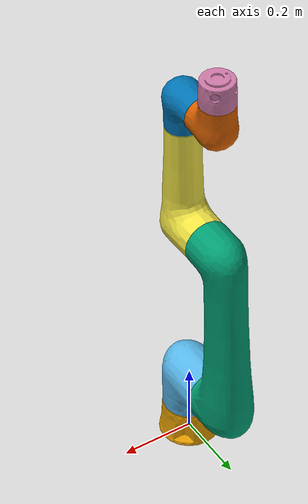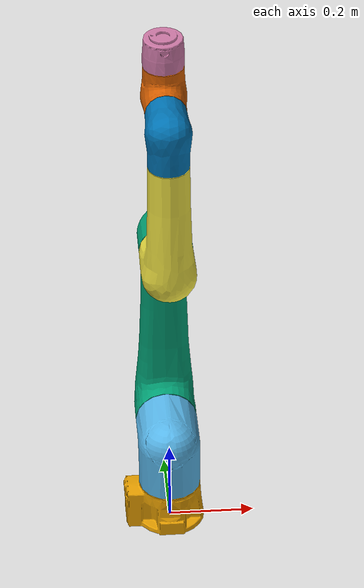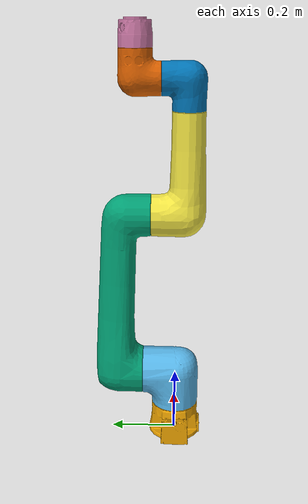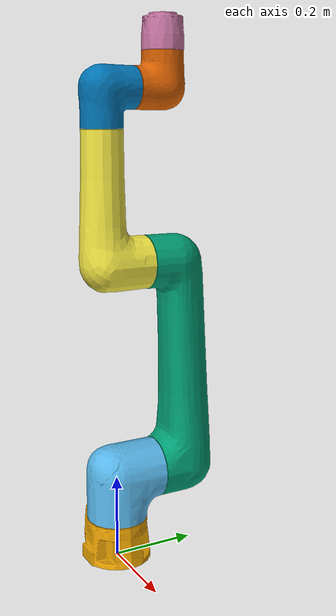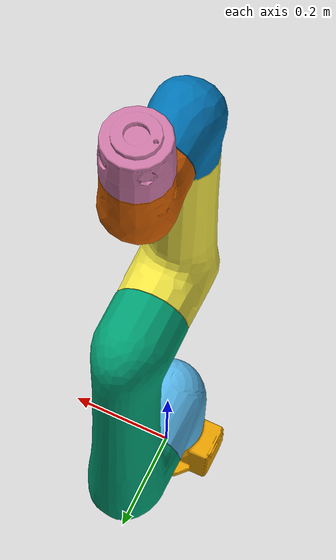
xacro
<?xml version="1.0" encoding="utf-8"?>
<robot name="cobotta_pro" xmlns:xacro="http://www.ros.org/wiki/xacro">
  <!-- Include description for 6-dof manipulator -->
  <xacro:include filename="$(find cvrb0609_description)/urdf/cvrb0609.urdf.xacro"/>
  <xacro:arg name="prefix" default="cobotta_pro_"/>

  <!-- Instantiate cobotta pro -->
  <xacro:cvrb0609 prefix="$(arg prefix)"/>

  <link name="world"/>

  <joint name="$(arg prefix)joint_w" type="fixed">
    <origin xyz="0 0 0" rpy="0 0 0"/>
    <parent link="world"/>
    <child link="$(arg prefix)base_link"/>
  </joint>
</robot>

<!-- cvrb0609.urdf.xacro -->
<!-- |    This document was autogenerated by xacro from cvrb0609.urdf.xacro            | -->
<!-- |    EDITING THIS FILE BY HAND IS NOT RECOMMENDED                                 | -->
<robot name="cvrb0609" xmlns:xacro="http://www.ros.org/wiki/xacro">
  <xacro:macro name="cvrb0609" params="prefix">

    <link name="${prefix}base_link">
      <visual>
        <origin rpy="0 0 0" xyz="0 0 0"/>
        <geometry>
          <mesh filename="package://cvrb0609_description/meshes//base_link.dae" scale="1 1 1"/>
        </geometry>
      </visual>
      <collision>
        <origin rpy="0 0 0" xyz="0 0 0"/>
        <geometry>
          <mesh filename="package://cvrb0609_description/meshes//base_link.dae" scale="1 1 1"/>
        </geometry>
      </collision>
      <inertial>
        <mass value="1"/>
        <origin rpy="0.000000 0.000000 0.000000" xyz="0.000000 0.000000 0.000000"/>
        <inertia ixx="1" ixy="0" ixz="0" iyy="1" iyz="0" izz="1"/>
      </inertial>
    </link>
    <link name="${prefix}J1">
      <visual>
        <origin rpy="0 0 0" xyz="0 0 0"/>
        <geometry>
          <mesh filename="package://cvrb0609_description/meshes//J1.dae" scale="1 1 1"/>
        </geometry>
      </visual>
      <collision>
        <origin rpy="0 0 0" xyz="0 0 0"/>
        <geometry>
          <mesh filename="package://cvrb0609_description/meshes//J1.dae" scale="1 1 1"/>
        </geometry>
      </collision>
      <inertial>
        <mass value="1"/>
        <origin rpy="0.000000 0.000000 0.000000" xyz="0.000000 0.000000 0.000000"/>
        <inertia ixx="1" ixy="0" ixz="0" iyy="1" iyz="0" izz="1"/>
      </inertial>
    </link>
    <joint name="${prefix}joint_1" type="revolute">
      <parent link="${prefix}base_link"/>
      <child link="${prefix}J1"/>
      <origin rpy="0.000000 0.000000 0.000000" xyz="0.000000 0.000000 0.101000"/>
      <axis xyz="-0.000000 -0.000000 1.000000"/>
      <limit effort="1" lower="-4.71238898038469" upper="4.71238898038469" velocity="0.397935"/>
      <dynamics damping="0" friction="0"/>
    </joint>
    <link name="${prefix}J2">
      <visual>
        <origin rpy="0 0 0" xyz="0 0 0"/>
        <geometry>
          <mesh filename="package://cvrb0609_description/meshes//J2.dae" scale="1 1 1"/>
        </geometry>
      </visual>
      <collision>
        <origin rpy="0 0 0" xyz="0 0 0"/>
        <geometry>
          <mesh filename="package://cvrb0609_description/meshes//J2.dae" scale="1 1 1"/>
        </geometry>
      </collision>
      <inertial>
        <mass value="1"/>
        <origin rpy="0.000000 0.000000 0.000000" xyz="0.000000 0.000000 0.000000"/>
        <inertia ixx="1" ixy="0" ixz="0" iyy="1" iyz="0" izz="1"/>
      </inertial>
    </link>
    <joint name="${prefix}joint_2" type="revolute">
      <parent link="${prefix}J1"/>
      <child link="${prefix}J2"/>
      <origin rpy="0.000000 0.000000 0.000000" xyz="0.000000 0.000000 0.109000"/>
      <axis xyz="-0.000000 1.000000 -0.000000"/>
      <limit effort="1" lower="-2.61799387799149" upper="2.61799387799149" velocity="0.331612"/>
      <dynamics damping="0" friction="0"/>
    </joint>
    <link name="${prefix}J3">
      <visual>
        <origin rpy="0 0 0" xyz="0 0 0"/>
        <geometry>
          <mesh filename="package://cvrb0609_description/meshes//J3.dae" scale="1 1 1"/>
        </geometry>
      </visual>
      <collision>
        <origin rpy="0 0 0" xyz="0 0 0"/>
        <geometry>
          <mesh filename="package://cvrb0609_description/meshes//J3.dae" scale="1 1 1"/>
        </geometry>
      </collision>
      <inertial>
        <mass value="1"/>
        <origin rpy="0.000000 0.000000 0.000000" xyz="0.000000 0.000000 0.000000"/>
        <inertia ixx="1" ixy="0" ixz="0" iyy="1" iyz="0" izz="1"/>
      </inertial>
    </link>
    <joint name="${prefix}joint_3" type="revolute">
      <parent link="${prefix}J2"/>
      <child link="${prefix}J3"/>
      <origin rpy="0.000000 0.000000 0.000000" xyz="0.000000 0.000000 0.510000"/>
      <axis xyz="-0.000000 1.000000 -0.000000"/>
      <limit effort="1" lower="-2.61799387799149" upper="2.61799387799149" velocity="0.397935"/>
      <dynamics damping="0" friction="0"/>
    </joint>
    <link name="${prefix}J4">
      <visual>
        <origin rpy="0 0 0" xyz="0 0 0"/>
        <geometry>
          <mesh filename="package://cvrb0609_description/meshes//J4.dae" scale="1 1 1"/>
        </geometry>
      </visual>
      <collision>
        <origin rpy="0 0 0" xyz="0 0 0"/>
        <geometry>
          <mesh filename="package://cvrb0609_description/meshes//J4.dae" scale="1 1 1"/>
        </geometry>
      </collision>
      <inertial>
        <mass value="1"/>
        <origin rpy="0.000000 0.000000 0.000000" xyz="0.000000 0.000000 0.000000"/>
        <inertia ixx="1" ixy="0" ixz="0" iyy="1" iyz="0" izz="1"/>
      </inertial>
    </link>
    <joint name="${prefix}joint_4" type="revolute">
      <parent link="${prefix}J3"/>
      <child link="${prefix}J4"/>
      <origin rpy="0.000000 0.000000 0.000000" xyz="0.000000 -0.030000 0.302000"/>
      <axis xyz="-0.000000 -0.000000 1.000000"/>
      <limit effort="1" lower="-4.71238898038469" upper="4.71238898038469" velocity="0.497418"/>
      <dynamics damping="0" friction="0"/>
    </joint>
    <link name="${prefix}J5">
      <visual>
        <origin rpy="0 0 0" xyz="0 0 0"/>
        <geometry>
          <mesh filename="package://cvrb0609_description/meshes//J5.dae" scale="1 1 1"/>
        </geometry>
      </visual>
      <collision>
        <origin rpy="0 0 0" xyz="0 0 0"/>
        <geometry>
          <mesh filename="package://cvrb0609_description/meshes//J5.dae" scale="1 1 1"/>
        </geometry>
      </collision>
      <inertial>
        <mass value="1"/>
        <origin rpy="0.000000 0.000000 0.000000" xyz="0.000000 0.000000 0.000000"/>
        <inertia ixx="1" ixy="0" ixz="0" iyy="1" iyz="0" izz="1"/>
      </inertial>
    </link>
    <joint name="${prefix}joint_5" type="revolute">
      <parent link="${prefix}J4"/>
      <child link="${prefix}J5"/>
      <origin rpy="0.000000 0.000000 0.000000" xyz="0.000000 0.030000 0.088000"/>
      <axis xyz="-0.000000 1.000000 -0.000000"/>
      <limit effort="1" lower="-2.61799387799149" upper="2.61799387799149" velocity="0.497418"/>
      <dynamics damping="0" friction="0"/>
    </joint>
    <link name="${prefix}J6">
      <visual>
        <origin rpy="0 0 0" xyz="0 0 0"/>
        <geometry>
          <mesh filename="package://cvrb0609_description/meshes//J6.dae" scale="1 1 1"/>
        </geometry>
      </visual>
      <collision>
        <origin rpy="0 0 0" xyz="0 0 0"/>
        <geometry>
          <mesh filename="package://cvrb0609_description/meshes//J6.dae" scale="1 1 1"/>
        </geometry>
      </collision>
      <inertial>
        <mass value="1"/>
        <origin rpy="0.000000 0.000000 0.000000" xyz="0.000000 0.000000 0.000000"/>
        <inertia ixx="1" ixy="0" ixz="0" iyy="1" iyz="0" izz="1"/>
      </inertial>
    </link>
    <joint name="${prefix}joint_6" type="revolute">
      <parent link="${prefix}J5"/>
      <child link="${prefix}J6"/>
      <origin rpy="0.000000 0.000000 0.000000" xyz="0.000000 0.120000 0.160000"/>
      <axis xyz="-0.000000 -0.000000 1.000000"/>
      <limit effort="1" lower="-6.28318530717959" upper="6.28318530717959" velocity="0.596903"/>
      <dynamics damping="0" friction="0"/>
    </joint>
  </xacro:macro>
</robot>
